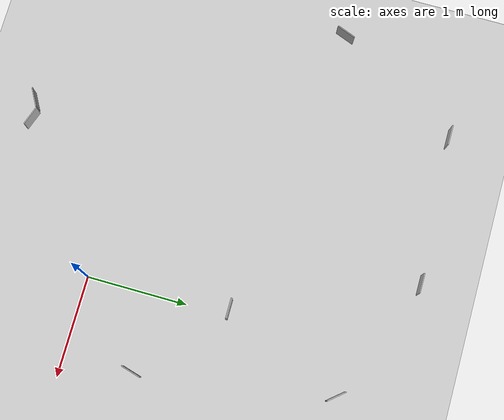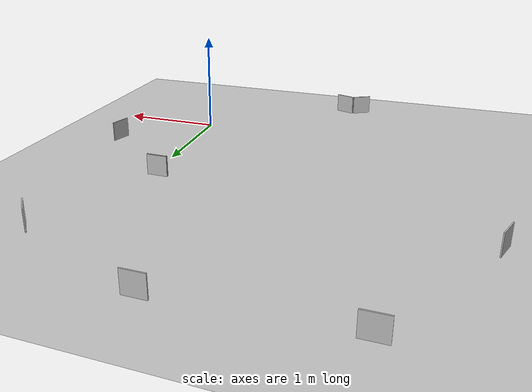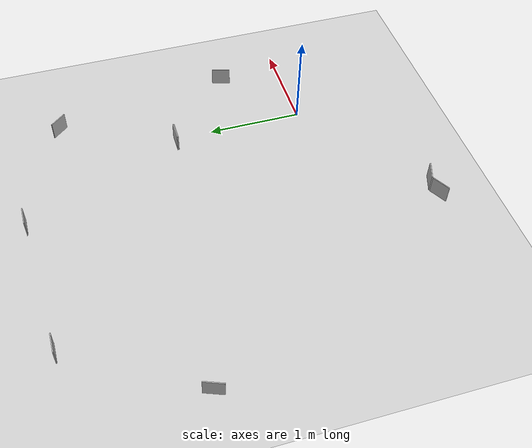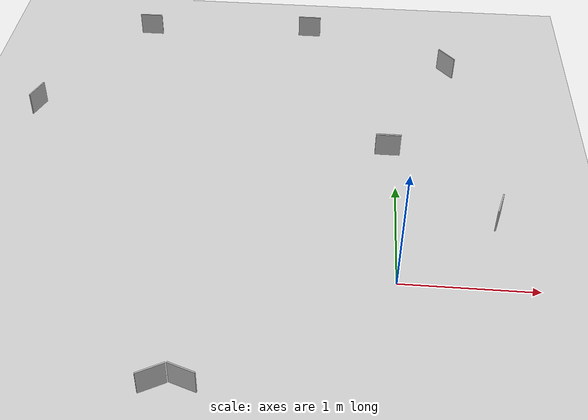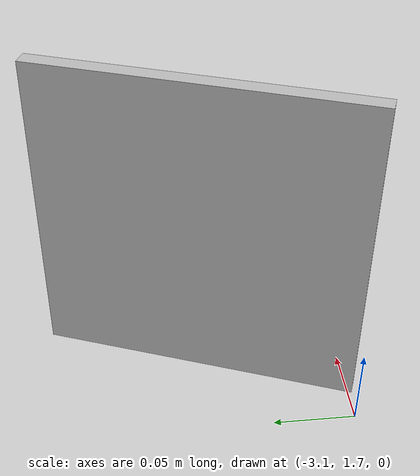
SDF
<sdf version="1.6">
 <world name="default">
  <light name="sun" type="directional">
   <pose>0 0 10 0 -0 0</pose>
   <diffuse>0.8 0.8 0.8 1</diffuse>
   <specular>0.2 0.2 0.2 1</specular>
   <attenuation>
    <range>1000</range>
    <constant>0.9</constant>
    <linear>0.01</linear>
    <quadratic>0.001</quadratic>
   </attenuation>
   <direction>-0.5 0.1 -0.9</direction>
  </light>
  <model name="ground_plane">
   <static>1</static>
   <link name="link">
    <collision name="collision">
     <geometry><plane><normal>0 0 1</normal><size>100 100</size></plane></geometry>
     <surface><friction><ode><mu>100</mu><mu2>50</mu2></ode></friction></surface>
    </collision>
    <visual name="visual">
     <cast_shadows>0</cast_shadows>
     <geometry><plane><normal>0 0 1</normal><size>100 100</size></plane></geometry>
     <material>
      <script><uri>file://media/materials/scripts/gazebo.material</uri><name>Gazebo/Grey</name></script>
     </material>
    </visual>
    <velocity_decay><linear>0</linear><angular>0</angular></velocity_decay>
   </link>
  </model>
  <physics name="default_physics" default="0" type="ode">
   <max_step_size>0.001</max_step_size>
   <real_time_factor>1</real_time_factor>
   <real_time_update_rate>1000</real_time_update_rate>
  </physics>
  <scene><ambient>0.4 0.4 0.4 1</ambient><background>0.7 0.7 0.7 1</background><shadows>1</shadows></scene>
  <spherical_coordinates>
   <surface_model>EARTH_WGS84</surface_model>
   <latitude_deg>0</latitude_deg>
   <longitude_deg>0</longitude_deg>
   <elevation>0</elevation>
   <heading_deg>0</heading_deg>
  </spherical_coordinates>
  <gravity>0 0 -9.8</gravity>
  <magnetic_field>6e-06 2.3e-05 -4.2e-05</magnetic_field>
  <atmosphere type="adiabatic"/>
  <model name="FitzB01_2">
   <static>1</static>
   <link name="link">
    <pose>0 0 0.1 0 -0 0</pose>
    <collision name="collision"><geometry><box><size>0.2 0.01 0.2</size></box></geometry></collision>
    <visual name="visual">
     <cast_shadows>0</cast_shadows>
     <geometry><box><size>0.2 0.01 0.2</size></box></geometry>
     <material>
      <script>
       <uri>model://FitzB01/materials/scripts</uri>
       <uri>model://FitzB01/materials/textures</uri>
       <name>vrc/FitzB01</name>
      </script>
     </material>
    </visual>
   </link>
   <pose>-1.35549 -0.987647 0 0 0 -0.336876</pose>
  </model>
  <model name="FitzB02">
   <static>1</static>
   <link name="link">
    <pose>0 0 0.1 0 -0 0</pose>
    <collision name="collision"><geometry><box><size>0.2 0.01 0.2</size></box></geometry></collision>
    <visual name="visual">
     <cast_shadows>0</cast_shadows>
     <geometry><box><size>0.2 0.01 0.2</size></box></geometry>
     <material>
      <script>
       <uri>model://FitzB02/materials/scripts</uri>
       <uri>model://FitzB02/materials/textures</uri>
       <name>vrc/FitzB02</name>
      </script>
     </material>
    </visual>
   </link>
   <pose>-1.54658 -1.00882 0 0 -0 0.506333</pose>
  </model>
  <model name="FitzB03">
   <static>1</static>
   <link name="link">
    <pose>0 0 0.1 0 -0 0</pose>
    <collision name="collision"><geometry><box><size>0.2 0.01 0.2</size></box></geometry></collision>
    <visual name="visual">
     <cast_shadows>0</cast_shadows>
     <geometry><box><size>0.2 0.01 0.2</size></box></geometry>
     <material>
      <script>
       <uri>model://FitzB03/materials/scripts</uri>
       <uri>model://FitzB03/materials/textures</uri>
       <name>vrc/FitzB03</name>
      </script>
     </material>
    </visual>
   </link>
   <pose>-0.062305 1.4074 0 0 -0 0</pose>
  </model>
  <model name="FitzB04">
   <static>1</static>
   <link name="link">
    <pose>0 0 0.1 0 -0 0</pose>
    <collision name="collision"><geometry><box><size>0.2 0.01 0.2</size></box></geometry></collision>
    <visual name="visual">
     <cast_shadows>0</cast_shadows>
     <geometry><box><size>0.2 0.01 0.2</size></box></geometry>
     <material>
      <script>
       <uri>model://FitzB04/materials/scripts</uri>
       <uri>model://FitzB04/materials/textures</uri>
       <name>vrc/FitzB04</name>
      </script>
     </material>
    </visual>
   </link>
   <pose>-0.061262 1.41669 0 0 -0 0</pose>
  </model>
  <model name="FitzB05">
   <static>1</static>
   <link name="link">
    <pose>0 0 0.1 0 -0 0</pose>
    <collision name="collision"><geometry><box><size>0.2 0.01 0.2</size></box></geometry></collision>
    <visual name="visual">
     <cast_shadows>0</cast_shadows>
     <geometry><box><size>0.2 0.01 0.2</size></box></geometry>
     <material>
      <script>
       <uri>model://FitzB05/materials/scripts</uri>
       <uri>model://FitzB05/materials/textures</uri>
       <name>vrc/FitzB05</name>
      </script>
     </material>
    </visual>
   </link>
   <pose>0.757457 0.681927 0 0 -0 1.29416</pose>
  </model>
  <model name="FitzB06">
   <static>1</static>
   <link name="link">
    <pose>0 0 0.1 0 -0 0</pose>
    <collision name="collision"><geometry><box><size>0.2 0.01 0.2</size></box></geometry></collision>
    <visual name="visual">
     <cast_shadows>0</cast_shadows>
     <geometry><box><size>0.2 0.01 0.2</size></box></geometry>
     <material>
      <script>
       <uri>model://FitzB06/materials/scripts</uri>
       <uri>model://FitzB06/materials/textures</uri>
       <name>vrc/FitzB06</name>
      </script>
     </material>
    </visual>
   </link>
   <pose>0.459417 2.60416 0 0 0 -0.872268</pose>
  </model>
  <model name="FitzB07">
   <static>1</static>
   <link name="link">
    <pose>0 0 0.1 0 -0 0</pose>
    <collision name="collision"><geometry><box><size>0.2 0.01 0.2</size></box></geometry></collision>
    <visual name="visual">
     <cast_shadows>0</cast_shadows>
     <geometry><box><size>0.2 0.01 0.2</size></box></geometry>
     <material>
      <script>
       <uri>model://FitzB07/materials/scripts</uri>
       <uri>model://FitzB07/materials/textures</uri>
       <name>vrc/FitzB07</name>
      </script>
     </material>
    </visual>
   </link>
   <pose>-0.790275 3.12111 0 0 -0 0</pose>
  </model>
  <model name="FitzB08">
   <static>1</static>
   <link name="link">
    <pose>0 0 0.1 0 -0 0</pose>
    <collision name="collision"><geometry><box><size>0.2 0.01 0.2</size></box></geometry></collision>
    <visual name="visual">
     <cast_shadows>0</cast_shadows>
     <geometry><box><size>0.2 0.01 0.2</size></box></geometry>
     <material>
      <script>
       <uri>model://FitzB08/materials/scripts</uri>
       <uri>model://FitzB08/materials/textures</uri>
       <name>vrc/FitzB08</name>
      </script>
     </material>
    </visual>
   </link>
   <pose>-2.28322 3.04095 0 0 -0 0</pose>
  </model>
  <model name="FitzB09">
   <static>1</static>
   <link name="link">
    <pose>0 0 0.1 0 -0 0</pose>
    <collision name="collision"><geometry><box><size>0.2 0.01 0.2</size></box></geometry></collision>
    <visual name="visual">
     <cast_shadows>0</cast_shadows>
     <geometry><box><size>0.2 0.01 0.2</size></box></geometry>
     <material>
      <script>
       <uri>model://FitzB09/materials/scripts</uri>
       <uri>model://FitzB09/materials/textures</uri>
       <name>vrc/FitzB09</name>
      </script>
     </material>
    </visual>
   </link>
   <pose>-3.03997 1.78896 0 0 -0 1.20201</pose>
  </model>
 </world>
</sdf>
